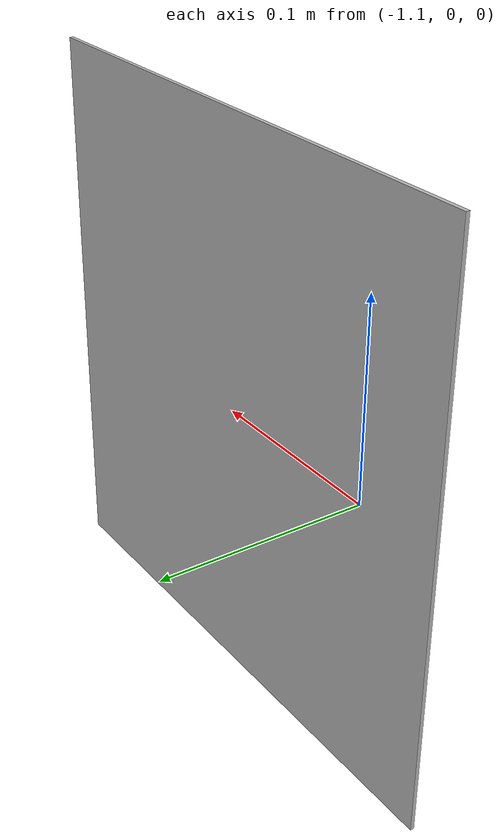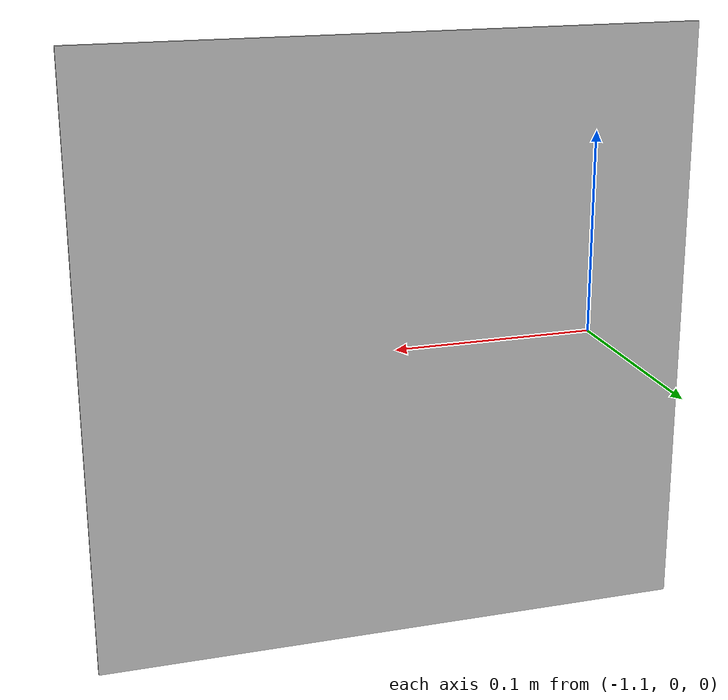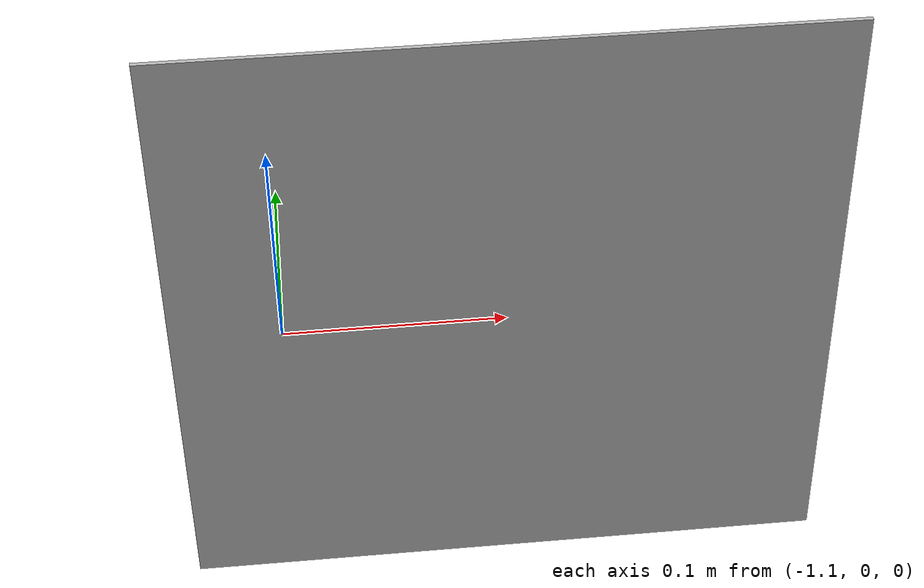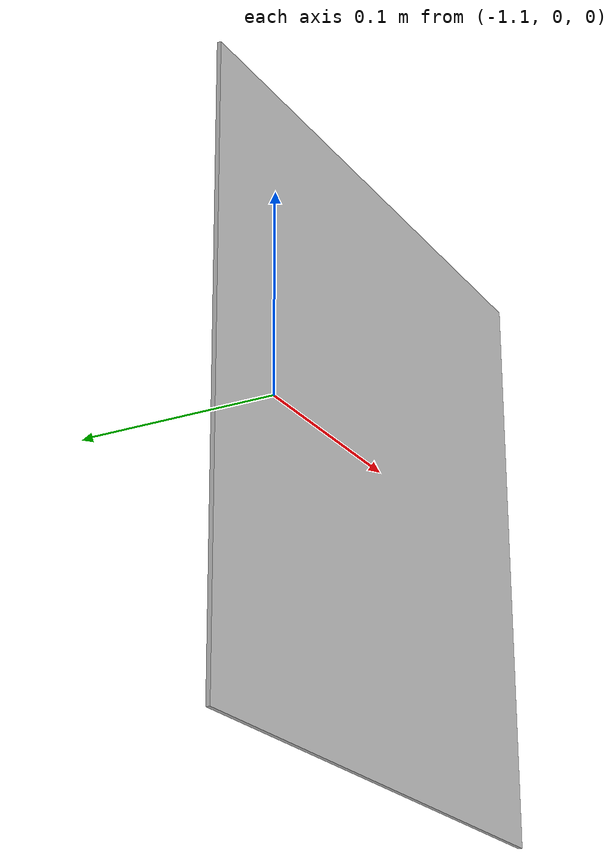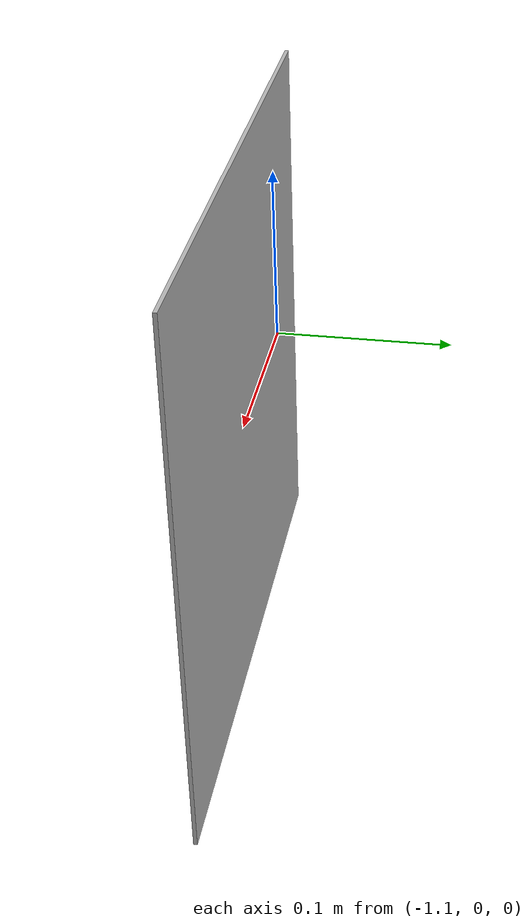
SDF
<?xml version="1.0" ?>
<sdf version="1.6">
  <model name="origin">
    <static>true</static>
    <pose>-1 0 0 1.5708 0 0</pose>
    <link name="link">
      <collision name="collision">
        <geometry>
          <mesh>
            <scale>1 1 1</scale>
            <uri>model://origin/origin.dae</uri>
          </mesh>
        </geometry>
        <surface>
          <friction>
            <ode>
              <mu>1.2</mu>
              <mu2>1.2</mu2>
            </ode>
          </friction>
        </surface>
      </collision>
      <visual name="visual">
        <geometry>
          <mesh>
            <scale>1 1 1</scale>
            <uri>model://origin/origin.dae</uri>
          </mesh>
        </geometry>
      </visual>
    </link>
  </model>
</sdf>
